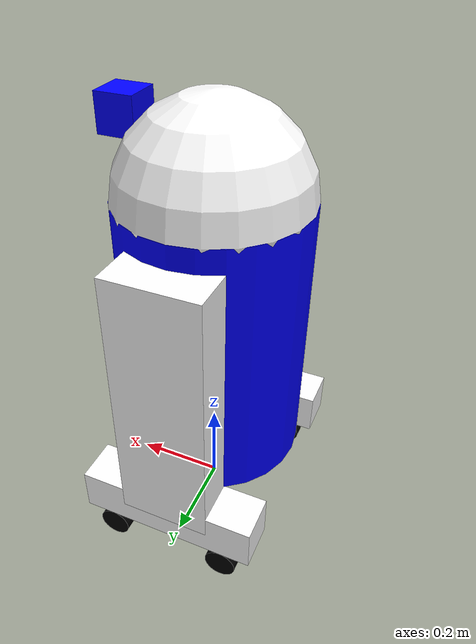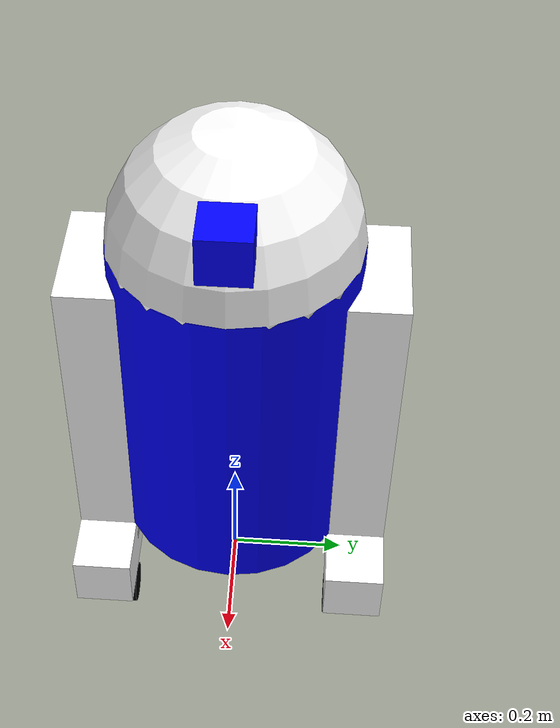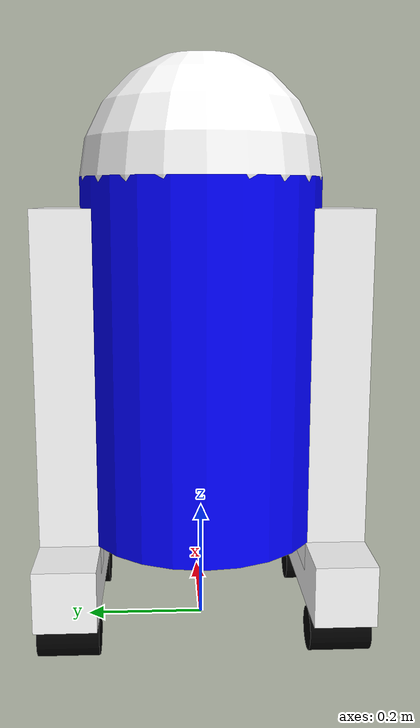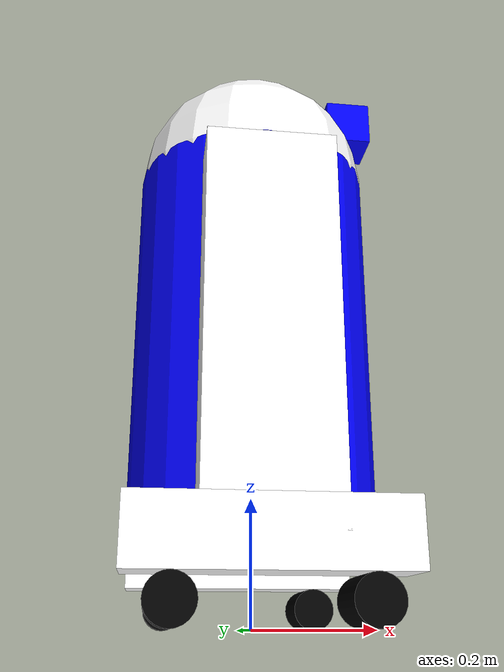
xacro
<?xml version="1.0"?>
<robot name="r2d2" xmlns:xacro="http://www.ros.org/wiki/xacro">

<xacro:arg name="prefix" default="r2d2"/>
<xacro:arg name="rgb" default="0 0 1"/>

<material name="color">
    <color rgba="$(arg rgb) 1"/>
</material>

  <material name="black">
    <color rgba="0 0 0 1"/>
  </material>
  <material name="white">
    <color rgba="1 1 1 1"/>
  </material>

  <link name="$(arg prefix)/base_link">
  </link>

  <link name="$(arg prefix)/body">
    <visual>
      <geometry>
        <cylinder length="0.6" radius="0.2"/>
      </geometry>
      <material name="color"/>
    </visual>
  </link>

  <joint name="base_link" type="fixed">
      <child link="$(arg prefix)/body"/>
      <parent link="$(arg prefix)/base_link"/>
    <origin xyz="0 0 .47"/>
   </joint>

  <link name="$(arg prefix)/right_leg">
    <visual>
      <geometry>
        <box size="0.6 .1 .2"/>
      </geometry>
      <origin rpy="0 1.57075 0" xyz="0 0 -0.3"/>
      <material name="white"/>
    </visual>
  </link>

  <joint name="base_to_right_leg" type="fixed">
    <parent link="$(arg prefix)/body"/>
    <child link="$(arg prefix)/right_leg"/>
    <origin xyz="0 -0.22 .25"/>
  </joint>

  <link name="$(arg prefix)/right_base">
    <visual>
      <geometry>
        <box size="0.4 .1 .1"/>
      </geometry>
      <material name="white"/>
    </visual>
  </link>

  <joint name="right_base_joint" type="fixed">
    <parent link="$(arg prefix)/right_leg"/>
    <child link="$(arg prefix)/right_base"/>
    <origin xyz="0 0 -0.6"/>
  </joint>

  <link name="$(arg prefix)/right_front_wheel">
    <visual>
      <origin rpy="1.57075 0 0" xyz="0 0 0"/>
      <geometry>
        <cylinder length="0.1" radius="0.035"/>
      </geometry>
      <material name="black"/>
      <origin rpy="0 0 0" xyz="0 0 0"/>
    </visual>
  </link>
  <joint name="right_front_wheel_joint" type="fixed">
    <axis rpy="0 0 0" xyz="0 1 0"/>
    <parent link="$(arg prefix)/right_base"/>
    <child link="$(arg prefix)/right_front_wheel"/>
    <origin rpy="0 0 0" xyz="0.133333333333 0 -0.085"/>
  </joint>

  <link name="$(arg prefix)/right_back_wheel">
    <visual>
      <origin rpy="1.57075 0 0" xyz="0 0 0"/>
      <geometry>
        <cylinder length="0.1" radius="0.035"/>
      </geometry>
      <material name="black"/>
    </visual>
  </link>
  <joint name="right_back_wheel_joint" type="fixed">
    <axis rpy="0 0 0" xyz="0 1 0"/>
    <parent link="$(arg prefix)/right_base"/>
    <child link="$(arg prefix)/right_back_wheel"/>
    <origin rpy="0 0 0" xyz="-0.133333333333 0 -0.085"/>
  </joint>

  <link name="$(arg prefix)/left_leg">
    <visual>
      <geometry>
        <box size="0.6 .1 .2"/>
      </geometry>
      <origin rpy="0 1.57075 0" xyz="0 0 -0.3"/>
      <material name="white"/>
    </visual>
  </link>

  <joint name="base_to_left_leg" type="fixed">
    <parent link="$(arg prefix)/body"/>
    <child link="$(arg prefix)/left_leg"/>
    <origin xyz="0 0.22 .25"/>
  </joint>

  <link name="$(arg prefix)/left_base">
    <visual>
      <geometry>
        <box size="0.4 .1 .1"/>
      </geometry>
      <material name="white"/>
    </visual>
  </link>

  <joint name="left_base_joint" type="fixed">
    <parent link="$(arg prefix)/left_leg"/>
    <child link="$(arg prefix)/left_base"/>
    <origin xyz="0 0 -0.6"/>
  </joint>

  <link name="$(arg prefix)/left_front_wheel">
    <visual>
      <origin rpy="1.57075 0 0" xyz="0 0 0"/>
      <geometry>
        <cylinder length="0.1" radius="0.035"/>
      </geometry>
      <material name="black"/>
    </visual>
  </link>
  <joint name="left_front_wheel_joint" type="fixed">
    <parent link="$(arg prefix)/left_base"/>
    <child link="$(arg prefix)/left_front_wheel"/>
    <origin rpy="0 0 0" xyz="0.133333333333 0 -0.085"/>
  </joint>

  <link name="$(arg prefix)/left_back_wheel">
    <visual>
      <origin rpy="1.57075 0 0" xyz="0 0 0"/>
      <geometry>
        <cylinder length="0.1" radius="0.035"/>
      </geometry>
      <material name="black"/>
    </visual>
  </link>
  <joint name="left_back_wheel_joint" type="fixed">
    <axis rpy="0 0 0" xyz="0 1 0"/>
    <parent link="$(arg prefix)/left_base"/>
    <child link="$(arg prefix)/left_back_wheel"/>
    <origin rpy="0 0 0" xyz="-0.133333333333 0 -0.085"/>
  </joint>

  <link name="$(arg prefix)/head">
    <visual>
      <geometry>
        <sphere radius="0.2"/>
      </geometry>
      <material name="white"/>
    </visual>
  </link>
  <joint name="head_swivel" type="fixed">
    <parent link="$(arg prefix)/body"/>
    <child link="$(arg prefix)/head"/>
    <origin xyz="0 0 0.3"/>
  </joint>

  <link name="$(arg prefix)/box">
    <visual>
      <geometry>
        <box size=".08 .08 .08"/>
      </geometry>
      <material name="color"/>
    </visual>
  </link>

  <joint name="tobox" type="fixed">
    <parent link="$(arg prefix)/head"/>
    <child link="$(arg prefix)/box"/>
    <origin xyz="0.1814 0 0.1414"/>
  </joint>
</robot>
